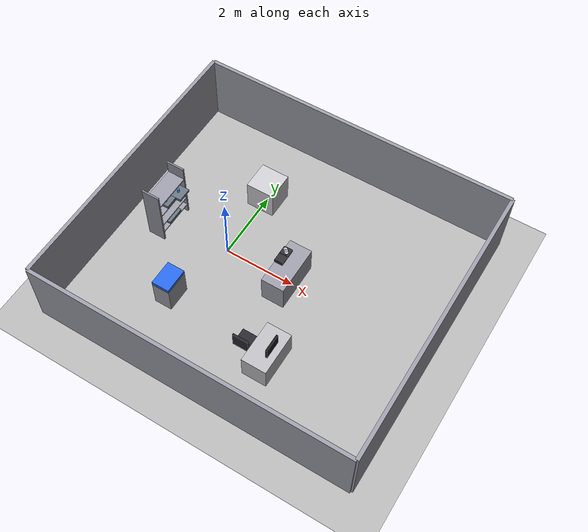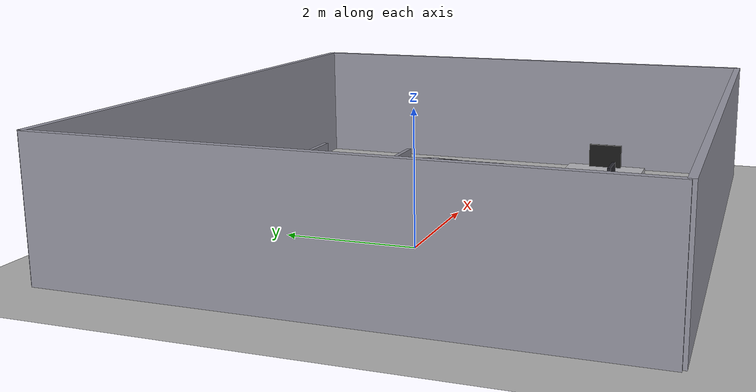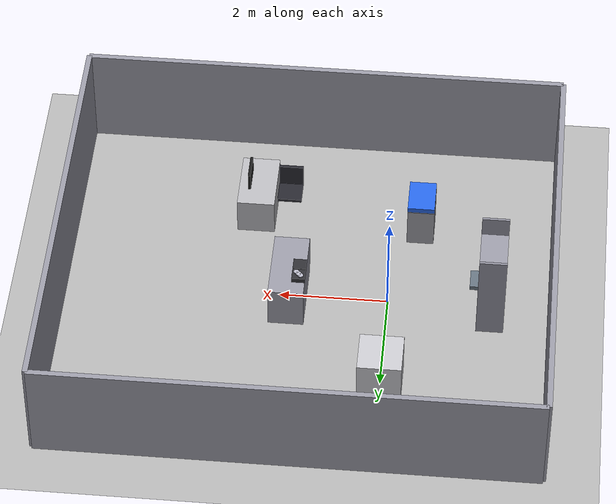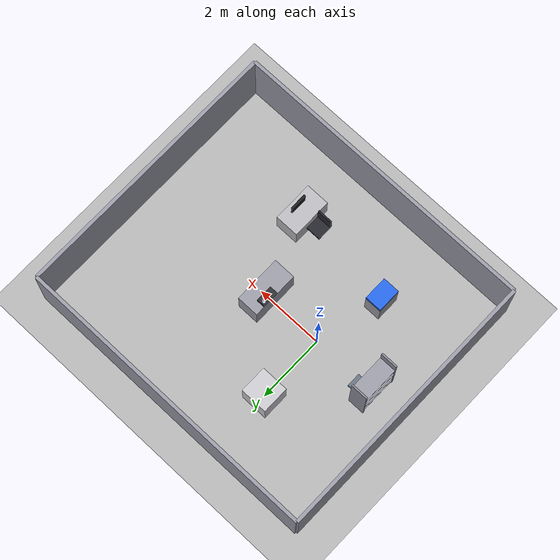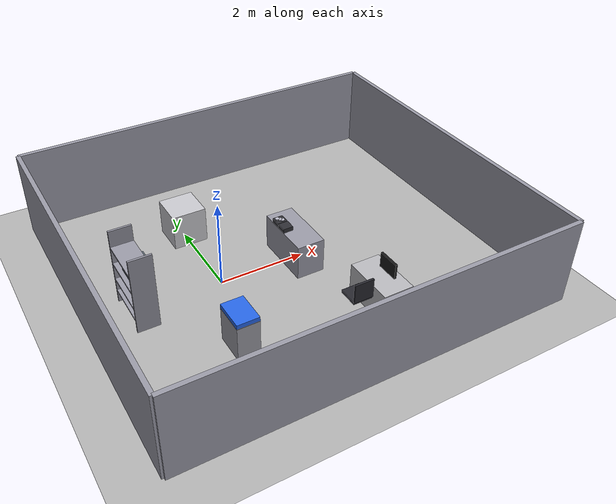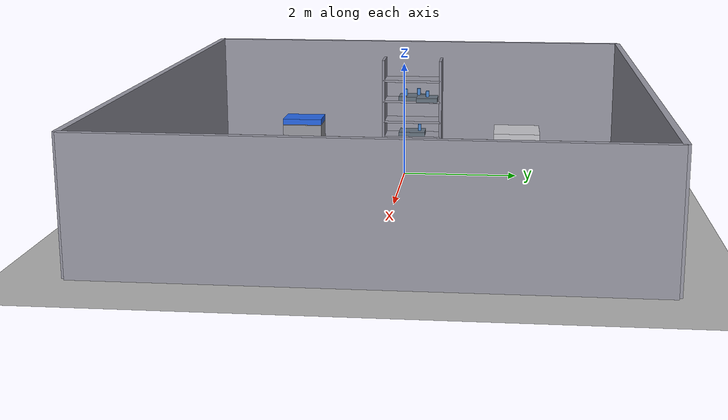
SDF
<?xml version="1.0"?>
<sdf version="1.8">
  <world name="moz1_pickplace">

    <!-- core gz-sim systems (Sensors+Imu enable the lidar/imu on the robot) -->
    <plugin filename="ignition-gazebo-physics-system" name="ignition::gazebo::systems::Physics"/>
    <plugin filename="ignition-gazebo-user-commands-system" name="ignition::gazebo::systems::UserCommands"/>
    <plugin filename="ignition-gazebo-scene-broadcaster-system" name="ignition::gazebo::systems::SceneBroadcaster"/>
    <plugin filename="ignition-gazebo-sensors-system" name="ignition::gazebo::systems::Sensors">
      <render_engine>ogre2</render_engine>
    </plugin>
    <plugin filename="ignition-gazebo-imu-system" name="ignition::gazebo::systems::Imu"/>

    <physics name="1ms" type="ignored">
      <max_step_size>0.004</max_step_size>
      <real_time_factor>1.0</real_time_factor>
    </physics>
    <scene><ambient>0.6 0.6 0.6 1</ambient><grid>false</grid></scene>

    <light type="directional" name="sun">
      <cast_shadows>false</cast_shadows>
      <pose>0 0 10 0 0 0</pose><diffuse>0.9 0.9 0.9 1</diffuse><specular>0.2 0.2 0.2 1</specular>
      <direction>-0.5 0.3 -1</direction>
    </light>

    <model name="ground_plane"><static>true</static>
      <link name="link">
        <collision name="c"><geometry><plane><normal>0 0 1</normal><size>100 100</size></plane></geometry></collision>
        <visual name="v"><geometry><plane><normal>0 0 1</normal><size>100 100</size></plane></geometry>
          <material><ambient>0.7 0.7 0.7 1</ambient><diffuse>0.7 0.7 0.7 1</diffuse></material></visual>
      </link>
    </model>

    <model name="workbench"><static>true</static><pose>1.825 0 0.41 0 0 0</pose>
      <link name="link">
        <collision name="c"><geometry><box><size>0.65 1.4 0.82</size></box></geometry></collision>
        <visual name="v"><geometry><box><size>0.65 1.4 0.82</size></box></geometry>
          <material><ambient>0.5 0.5 0.55 1</ambient><diffuse>0.6 0.6 0.65 1</diffuse></material></visual>
      </link>
    </model>
    <!-- Bins sit ON the workbench top (bottom z=0.82) at the near-left edge (x=1.62,
         span 1.50-1.74 — fully on the 1.50-2.15 top), left arm side (y+). -->
    <model name="bin_bearing_pick"><static>true</static><pose>1.62 0.30 0.87 0 0 0</pose>
      <link name="link">
        <collision name="c"><geometry><box><size>0.24 0.24 0.10</size></box></geometry></collision>
        <visual name="v"><geometry><box><size>0.24 0.24 0.10</size></box></geometry>
          <material><ambient>0.12 0.12 0.14 1</ambient><diffuse>0.18 0.18 0.20 1</diffuse></material></visual>
      </link>
    </model>
    <model name="bin_bearing_place"><static>true</static><pose>1.62 0.05 0.87 0 0 0</pose>
      <link name="link">
        <collision name="c"><geometry><box><size>0.24 0.24 0.10</size></box></geometry></collision>
        <visual name="v"><geometry><box><size>0.24 0.24 0.10</size></box></geometry>
          <material><ambient>0.12 0.12 0.14 1</ambient><diffuse>0.18 0.18 0.20 1</diffuse></material></visual>
      </link>
    </model>
    <!-- bearing_ring: the DYNAMIC grasp target, resting on the pick bin (top 0.92). -->
    <model name="bearing_ring"><static>false</static><pose>1.62 0.30 0.93 0 0 0</pose>
      <link name="link">
        <inertial><mass>0.15</mass><inertia><ixx>1e-4</ixx><iyy>1e-4</iyy><izz>1e-4</izz><ixy>0</ixy><ixz>0</ixz><iyz>0</iyz></inertia></inertial>
        <collision name="c"><geometry><cylinder><radius>0.05</radius><length>0.02</length></cylinder></geometry></collision>
        <visual name="v"><geometry><cylinder><radius>0.05</radius><length>0.02</length></cylinder></geometry>
          <material><ambient>0.6 0.6 0.65 1</ambient><diffuse>0.75 0.75 0.8 1</diffuse></material></visual>
      </link>
    </model>
    <!-- static filler rings (scenery, not grasped) -->
    <model name="bearing_ring_filler_1"><static>true</static><pose>1.58 0.34 0.93 0 0 0</pose>
      <link name="link"><visual name="v"><geometry><cylinder><radius>0.05</radius><length>0.02</length></cylinder></geometry>
        <material><ambient>0.6 0.6 0.65 1</ambient><diffuse>0.72 0.72 0.78 1</diffuse></material></visual></link></model>
    <model name="bearing_ring_filler_2"><static>true</static><pose>1.66 0.26 0.93 0 0 0</pose>
      <link name="link"><visual name="v"><geometry><cylinder><radius>0.05</radius><length>0.02</length></cylinder></geometry>
        <material><ambient>0.6 0.6 0.65 1</ambient><diffuse>0.72 0.72 0.78 1</diffuse></material></visual></link></model>

    <model name="shelf_side_left"><static>true</static><pose>-1.9 0.55 0.9 0 0 0</pose>
      <link name="link">
        <collision name="c"><geometry><box><size>0.5 0.05 1.8</size></box></geometry></collision>
        <visual name="v"><geometry><box><size>0.5 0.05 1.8</size></box></geometry>
          <material><ambient>0.45 0.45 0.5 1</ambient><diffuse>0.55 0.55 0.6 1</diffuse></material></visual></link></model>
    <model name="shelf_side_right"><static>true</static><pose>-1.9 -0.55 0.9 0 0 0</pose>
      <link name="link">
        <collision name="c"><geometry><box><size>0.5 0.05 1.8</size></box></geometry></collision>
        <visual name="v"><geometry><box><size>0.5 0.05 1.8</size></box></geometry>
          <material><ambient>0.45 0.45 0.5 1</ambient><diffuse>0.55 0.55 0.6 1</diffuse></material></visual></link></model>
    <model name="shelf_plate_0"><static>true</static><pose>-1.9 0 0.30 0 0 0</pose>
      <link name="link">
        <collision name="c"><geometry><box><size>0.5 1.1 0.04</size></box></geometry></collision>
        <visual name="v"><geometry><box><size>0.5 1.1 0.04</size></box></geometry>
          <material><ambient>0.5 0.5 0.55 1</ambient><diffuse>0.6 0.6 0.65 1</diffuse></material></visual></link></model>
    <model name="shelf_plate_1"><static>true</static><pose>-1.9 0 0.60 0 0 0</pose>
      <link name="link">
        <collision name="c"><geometry><box><size>0.5 1.1 0.04</size></box></geometry></collision>
        <visual name="v"><geometry><box><size>0.5 1.1 0.04</size></box></geometry>
          <material><ambient>0.5 0.5 0.55 1</ambient><diffuse>0.6 0.6 0.65 1</diffuse></material></visual></link></model>
    <model name="shelf_plate_2"><static>true</static><pose>-1.9 0 1.00 0 0 0</pose>
      <link name="link">
        <collision name="c"><geometry><box><size>0.5 1.1 0.04</size></box></geometry></collision>
        <visual name="v"><geometry><box><size>0.5 1.1 0.04</size></box></geometry>
          <material><ambient>0.5 0.5 0.55 1</ambient><diffuse>0.6 0.6 0.65 1</diffuse></material></visual></link></model>
    <model name="shelf_plate_3"><static>true</static><pose>-1.9 0 1.40 0 0 0</pose>
      <link name="link">
        <collision name="c"><geometry><box><size>0.5 1.1 0.04</size></box></geometry></collision>
        <visual name="v"><geometry><box><size>0.5 1.1 0.04</size></box></geometry>
          <material><ambient>0.5 0.5 0.55 1</ambient><diffuse>0.6 0.6 0.65 1</diffuse></material></visual></link></model>
    <!-- trays on the plates -->
    <!-- pick tray on the z=1.00 shelf plate at the right arm's reach from the
         (-1.25,0,π) standoff: grasp target ≈ base_link (0.45,-0.30,0.98) ≈ the
         measured right-hand home pose. -->
    <model name="tray_bottle_pick"><static>true</static><pose>-1.70 0.30 1.06 0 0 0</pose>
      <link name="link"><visual name="v"><geometry><box><size>0.4 0.4 0.08</size></box></geometry>
        <material><ambient>0.3 0.35 0.4 1</ambient><diffuse>0.4 0.45 0.5 1</diffuse></material></visual></link></model>
    <model name="tray_filler_upper"><static>true</static><pose>-1.85 0 1.06 0 0 0</pose>
      <link name="link"><visual name="v"><geometry><box><size>0.4 0.5 0.08</size></box></geometry>
        <material><ambient>0.3 0.35 0.4 1</ambient><diffuse>0.4 0.45 0.5 1</diffuse></material></visual></link></model>
    <model name="tray_filler_lower"><static>true</static><pose>-1.85 0 0.36 0 0 0</pose>
      <link name="link"><visual name="v"><geometry><box><size>0.4 0.5 0.08</size></box></geometry>
        <material><ambient>0.3 0.35 0.4 1</ambient><diffuse>0.4 0.45 0.5 1</diffuse></material></visual></link></model>
    <!-- sample_bottle: the DYNAMIC grasp target (on the pick tray). -->
    <model name="sample_bottle"><static>false</static><pose>-1.70 0.30 1.14 0 0 0</pose>
      <link name="link">
        <inertial><mass>0.08</mass><inertia><ixx>1e-4</ixx><iyy>1e-4</iyy><izz>3e-5</izz><ixy>0</ixy><ixz>0</ixz><iyz>0</iyz></inertia></inertial>
        <collision name="c"><geometry><cylinder><radius>0.03</radius><length>0.15</length></cylinder></geometry></collision>
        <visual name="v"><geometry><cylinder><radius>0.03</radius><length>0.15</length></cylinder></geometry>
          <material><ambient>0.2 0.4 0.7 1</ambient><diffuse>0.3 0.55 0.85 1</diffuse></material></visual>
      </link>
    </model>
    <!-- static filler bottles (scenery) -->
    <model name="sample_bottle_filler_1"><static>true</static><pose>-1.90 0.12 1.15 0 0 0</pose>
      <link name="link"><visual name="v"><geometry><cylinder><radius>0.03</radius><length>0.15</length></cylinder></geometry>
        <material><ambient>0.2 0.4 0.7 1</ambient><diffuse>0.3 0.55 0.85 1</diffuse></material></visual></link></model>
    <model name="sample_bottle_filler_2"><static>true</static><pose>-1.80 -0.12 1.15 0 0 0</pose>
      <link name="link"><visual name="v"><geometry><cylinder><radius>0.03</radius><length>0.15</length></cylinder></geometry>
        <material><ambient>0.2 0.4 0.7 1</ambient><diffuse>0.3 0.55 0.85 1</diffuse></material></visual></link></model>
    <model name="sample_bottle_filler_3"><static>true</static><pose>-1.85 0.14 0.45 0 0 0</pose>
      <link name="link"><visual name="v"><geometry><cylinder><radius>0.03</radius><length>0.15</length></cylinder></geometry>
        <material><ambient>0.2 0.4 0.7 1</ambient><diffuse>0.3 0.55 0.85 1</diffuse></material></visual></link></model>

    <!-- ============ PLACE TABLE — robot's LEFT (+y), for placing bottles ========
         Standoff sample_bottle_place=(0,1.1,pi/2). -->
    <model name="place_table"><static>true</static><pose>0 2.0 0.425 0 0 0</pose>
      <link name="link">
        <collision name="c"><geometry><box><size>0.8 0.8 0.85</size></box></geometry></collision>
        <visual name="v"><geometry><box><size>0.8 0.8 0.85</size></box></geometry>
          <material><ambient>0.65 0.65 0.68 1</ambient><diffuse>0.78 0.78 0.8 1</diffuse></material></visual>
      </link>
    </model>

    <!-- ============ Decor (static visual props; also Nav2 obstacles) ============ -->
    <model name="desk"><static>true</static><pose>2.6 -2.2 0.36 0 0 0</pose>
      <link name="link">
        <collision name="c"><geometry><box><size>0.7 1.2 0.72</size></box></geometry></collision>
        <visual name="v"><geometry><box><size>0.7 1.2 0.72</size></box></geometry>
          <material><ambient>0.6 0.6 0.62 1</ambient><diffuse>0.72 0.72 0.74 1</diffuse></material></visual></link></model>
    <model name="monitor"><static>true</static><pose>2.75 -2.2 0.92 0 0 0</pose>
      <link name="link"><visual name="v"><geometry><box><size>0.05 0.5 0.35</size></box></geometry>
        <material><ambient>0.05 0.05 0.05 1</ambient><diffuse>0.1 0.1 0.1 1</diffuse></material></visual></link></model>
    <model name="chair_seat"><static>true</static><pose>2.0 -2.2 0.48 0 0 0</pose>
      <link name="link"><visual name="v"><geometry><box><size>0.45 0.45 0.06</size></box></geometry>
        <material><ambient>0.1 0.1 0.12 1</ambient><diffuse>0.15 0.15 0.18 1</diffuse></material></visual></link></model>
    <model name="chair_back"><static>true</static><pose>2.0 -2.42 0.72 0 0 0</pose>
      <link name="link"><visual name="v"><geometry><box><size>0.45 0.05 0.45</size></box></geometry>
        <material><ambient>0.1 0.1 0.12 1</ambient><diffuse>0.15 0.15 0.18 1</diffuse></material></visual></link></model>
    <model name="cart"><static>true</static><pose>-0.5 -1.9 0.40 0 0 0</pose>
      <link name="link">
        <collision name="c"><geometry><box><size>0.5 0.7 0.80</size></box></geometry></collision>
        <visual name="v"><geometry><box><size>0.5 0.7 0.80</size></box></geometry>
          <material><ambient>0.5 0.5 0.52 1</ambient><diffuse>0.6 0.6 0.63 1</diffuse></material></visual></link></model>
    <model name="cart_tray_blue"><static>true</static><pose>-0.5 -1.9 0.86 0 0 0</pose>
      <link name="link"><visual name="v"><geometry><box><size>0.5 0.7 0.10</size></box></geometry>
        <material><ambient>0.1 0.3 0.8 1</ambient><diffuse>0.15 0.4 0.9 1</diffuse></material></visual></link></model>

    <!-- ===== Room walls (2 m tall): lidar/SLAM features + nav bounds.
         Room spans x[-3,6] y[-4,4] around the robot origin. -->
    <model name="wall_north"><static>true</static><pose>1.5 4 1 0 0 0</pose><link name="link">
      <collision name="c"><geometry><box><size>9 0.1 2</size></box></geometry></collision>
      <visual name="v"><geometry><box><size>9 0.1 2</size></box></geometry>
        <material><ambient>0.55 0.55 0.6 1</ambient><diffuse>0.6 0.6 0.65 1</diffuse></material></visual></link></model>
    <model name="wall_south"><static>true</static><pose>1.5 -4 1 0 0 0</pose><link name="link">
      <collision name="c"><geometry><box><size>9 0.1 2</size></box></geometry></collision>
      <visual name="v"><geometry><box><size>9 0.1 2</size></box></geometry>
        <material><ambient>0.55 0.55 0.6 1</ambient><diffuse>0.6 0.6 0.65 1</diffuse></material></visual></link></model>
    <model name="wall_east"><static>true</static><pose>6 0 1 0 0 0</pose><link name="link">
      <collision name="c"><geometry><box><size>0.1 8 2</size></box></geometry></collision>
      <visual name="v"><geometry><box><size>0.1 8 2</size></box></geometry>
        <material><ambient>0.55 0.55 0.6 1</ambient><diffuse>0.6 0.6 0.65 1</diffuse></material></visual></link></model>
    <model name="wall_west"><static>true</static><pose>-3 0 1 0 0 0</pose><link name="link">
      <collision name="c"><geometry><box><size>0.1 8 2</size></box></geometry></collision>
      <visual name="v"><geometry><box><size>0.1 8 2</size></box></geometry>
        <material><ambient>0.55 0.55 0.6 1</ambient><diffuse>0.6 0.6 0.65 1</diffuse></material></visual></link></model>
  </world>
</sdf>
